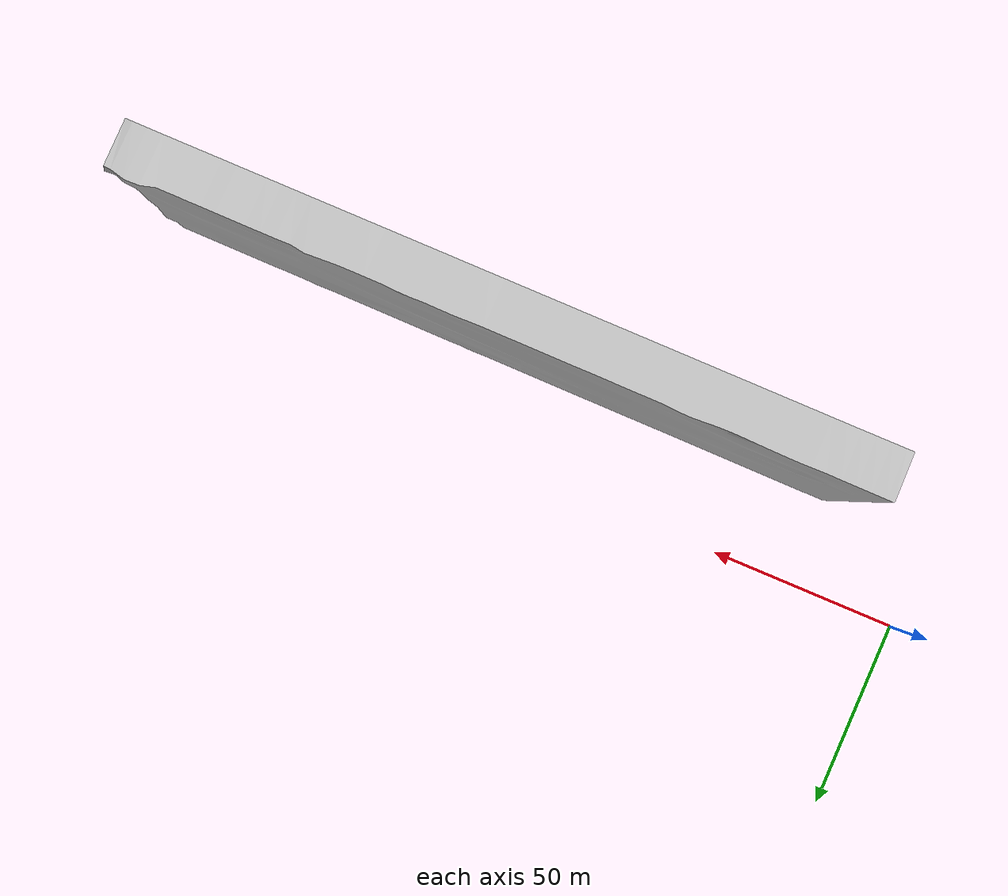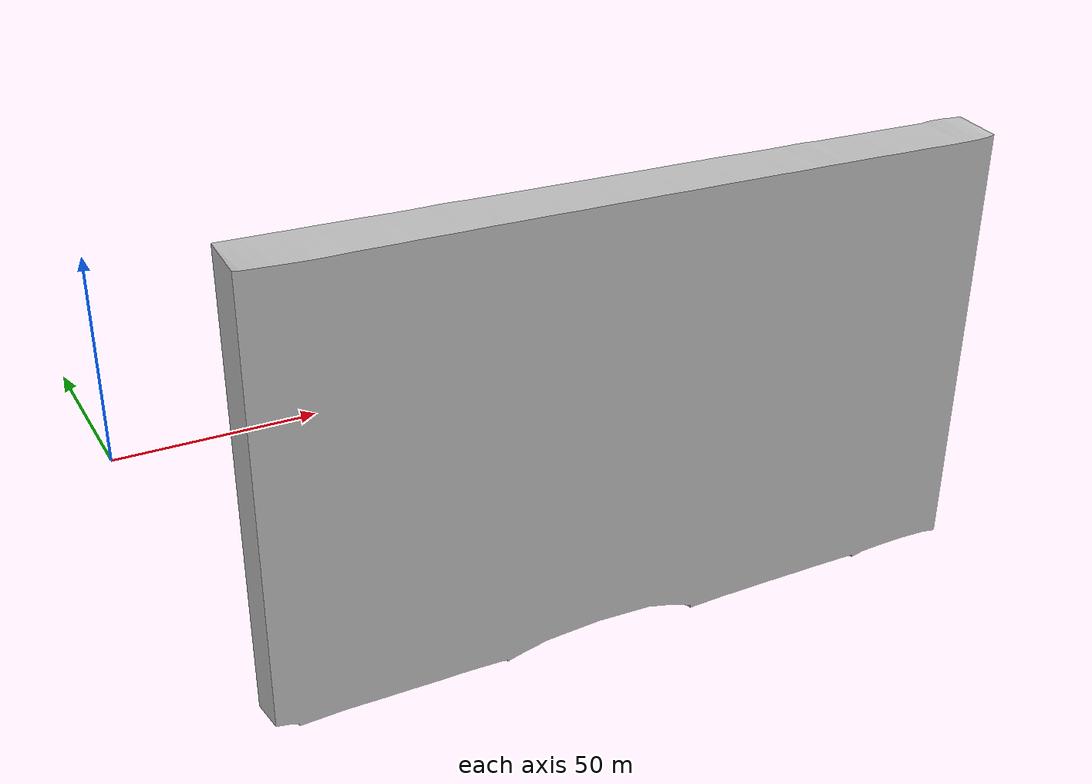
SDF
<sdf version='1.7'>
  <world name='empty'>
    <scene>
      <shadows>false</shadows>
      <ambient>0.400000006 0.400000006 0.400000006 1</ambient>
      <background>0.699999988 0.699999988 0.699999988 1</background>
    </scene>

    <physics name='1ms' type='ode'>
      <max_step_size>0.001</max_step_size>
      <real_time_factor>1.0</real_time_factor>
      <real_time_update_rate>1000</real_time_update_rate>
      <ode>
        <solver>
          <type>quick</type>
          <iters>100</iters>
        </solver>
          <bounce>0.0</bounce>
          <cfm>0.000001</cfm>
          <erp>0.6</erp>
          <kp>10e8</kp>
          <kd>1</kd>
          <max_vel>100.01</max_vel>
          <min_depth>0.001</min_depth>
      </ode>
    </physics>
    <spherical_coordinates>
      <surface_model>EARTH_WGS84</surface_model>
      <latitude_deg>56.334023</latitude_deg>
      <longitude_deg>43.640962</longitude_deg>
      <elevation>162.0</elevation>
      <heading_deg>180</heading_deg>
    </spherical_coordinates>

    <gravity>0 0 -9.8000000000000007</gravity>
    <magnetic_field>5.5644999999999998e-06 2.2875799999999999e-05 -4.2388400000000002e-05</magnetic_field>
    <atmosphere type='adiabatic'/>

    <include>
      <uri>model:///bmstu/ros2_ws/src/main/models/map_model</uri>
      <pose>107.75 -33.58 0.0 1.57 0.0 3.14</pose>
    </include>

  <light name='sun' type='directional'>
      <pose>0 0 10 0 0 0</pose>
      <cast_shadows>true</cast_shadows>
      <intensity>1</intensity>
      <direction>-0.5 0.10000000000000001 -0.90000000000000002</direction>
      <diffuse>0.800000012 0.800000012 0.800000012 1</diffuse>
      <specular>0.200000003 0.200000003 0.200000003 1</specular>
      <attenuation>
        <range>1000</range>
        <linear>0.01</linear>
        <constant>0.90000000000000002</constant>
        <quadratic>0.001</quadratic>
      </attenuation>
      <spot>
        <inner_angle>0</inner_angle>
        <outer_angle>0</outer_angle>
        <falloff>0</falloff>
      </spot>
  </light>
  </world>
</sdf>

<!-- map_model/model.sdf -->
<sdf version="1.7">
  <model name="my_terrain">
    <!-- Статический объект (не двигается) -->
    <static>true</static>
    <pose>0.0 0.0 0.00 0.0 0.0 0.0</pose>
    <!-- Ссылка на основную геометрию -->
    <link name="base_link">
      <!-- Визуальная часть (рендеринг) -->
      <visual name="visual">
        <geometry>
          <!-- Загрузка .stl -->
          <mesh>
            <uri>file:///bmstu/ros2_ws/src/main/worlds/1234/map.obj</uri>
            <scale>0.83 0.83 0.83</scale>  <!-- Масштаб (если нужно) -->
          </mesh>
        </geometry>

        <!-- Материал (если есть .tif-текстура) -->
      </visual>

      <!-- Коллизии (физика) -->
      <collision name="collision">
        <geometry>
          <mesh>
            <uri>file:///bmstu/ros2_ws/src/main/worlds/1234/map.obj</uri>
            <scale>0.83 0.83 0.83</scale>
          </mesh>
        </geometry>
        <surface>
            <friction>
                <ode>
                    <mu>1</mu>
                    <mu2>1</mu2>
                    <slip1>0</slip1>
                    <slip2>0</slip2>
                </ode>
            </friction>
            <contact>
                <ode>
                    <cfm>0.00001</cfm>
                    <erp>0.2</erp>
                    <kp>1e8</kp>
                    <kd>1</kd>
                    <max_vel>0.01</max_vel>
                    <min_depth>0.00001</min_depth>
                </ode>
            </contact>
        </surface>
      </collision>

    </link>
  </model>
</sdf>
